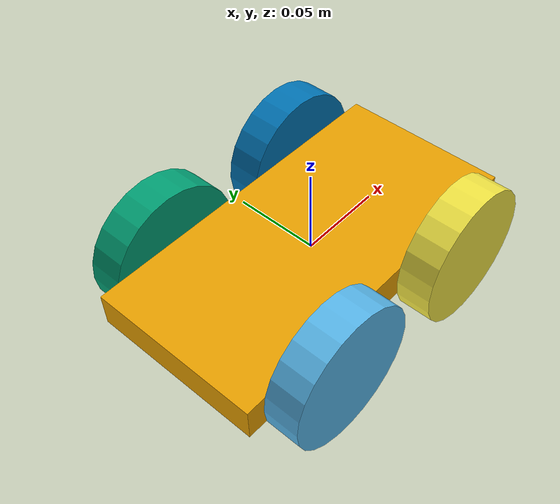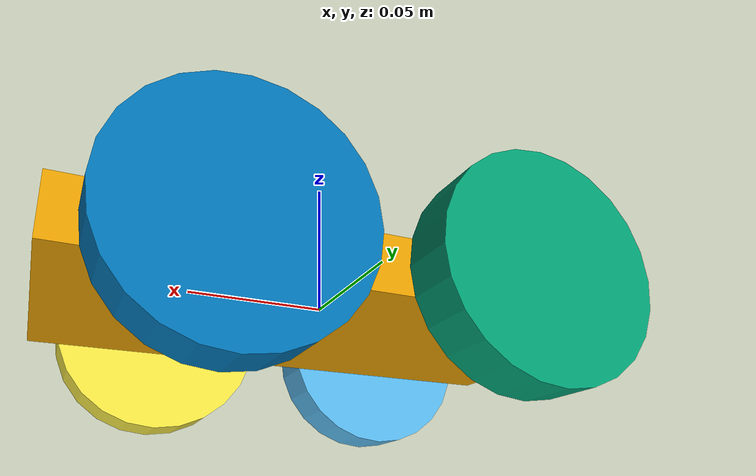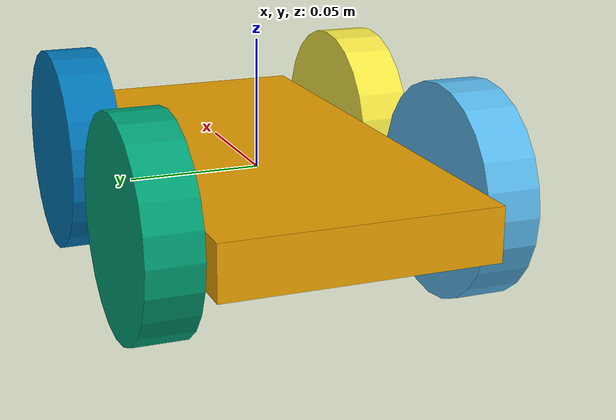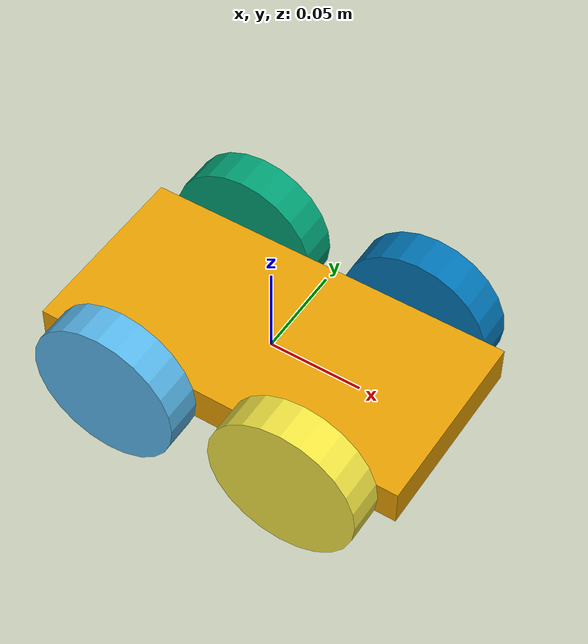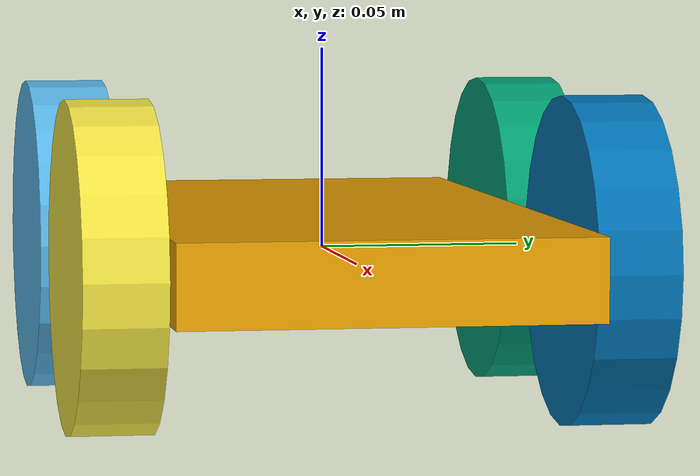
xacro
<?xml version="1.0" ?>
<robot name="/home/diogo/catkin_ws/src/robots/carbot/carbot_description/urdf/carbot2.urdf" version="1.0">
  <link name="base_link">
    <visual>
      <geometry>
        <box size="0.2 0.1 0.02"/>
      </geometry>
    </visual>
    <collision>
      <geometry>
        <box size="0.2 0.1 0.02"/>
      </geometry>
    </collision>
  </link>
  <joint name="wheel4" type="continuous">
    <origin xyz="-0.05 -0.06 0.0" rpy="1.5708 -1e-06 0.0"/>
    <axis xyz="0.0 -4e-06 -1.0"/>
    <parent link="base_link"/>
    <child link="wheel4"/>
    <limit effort="10.0" lower="0" upper="0" velocity="10.0"/>
  </joint>
  <link name="wheel4">
    <visual>
      <origin xyz="-3e-06 2e-06 0.0" rpy="0.0 0.0 0.0"/>
      <geometry>
        <cylinder radius="0.04" length="0.02"/>
      </geometry>
    </visual>
    <collision>
      <origin xyz="-3e-06 2e-06 0.0" rpy="0.0 0.0 0.0"/>
      <geometry>
        <cylinder radius="0.04" length="0.02"/>
      </geometry>
    </collision>
  </link>
  <joint name="wheel3" type="continuous">
    <origin xyz="-0.050003 0.060002 0.0" rpy="1.5708 0.0 0.0"/>
    <axis xyz="0.0 -4e-06 -1.0"/>
    <parent link="base_link"/>
    <child link="wheel3"/>
    <limit effort="10.0" lower="0" upper="0" velocity="10.0"/>
  </joint>
  <link name="wheel3">
    <visual>
      <origin xyz="0.0 5e-06 0.0" rpy="0.0 0.0 0.0"/>
      <geometry>
        <cylinder radius="0.04" length="0.02"/>
      </geometry>
    </visual>
    <collision>
      <origin xyz="0.0 5e-06 0.0" rpy="0.0 0.0 0.0"/>
      <geometry>
        <cylinder radius="0.04" length="0.02"/>
      </geometry>
    </collision>
  </link>
  <joint name="wheel2" type="continuous">
    <origin xyz="0.05 -0.059995 0.0" rpy="1.5708 -1e-06 0.0"/>
    <axis xyz="0.0 -4e-06 -1.0"/>
    <parent link="base_link"/>
    <child link="wheel2"/>
    <limit effort="10.0" lower="0" upper="0" velocity="10.0"/>
  </joint>
  <link name="wheel2">
    <visual>
      <origin xyz="-3e-06 2e-06 0.0" rpy="0.0 0.0 0.0"/>
      <geometry>
        <cylinder radius="0.04" length="0.02"/>
      </geometry>
    </visual>
    <collision>
      <origin xyz="-3e-06 2e-06 0.0" rpy="0.0 0.0 0.0"/>
      <geometry>
        <cylinder radius="0.04" length="0.02"/>
      </geometry>
    </collision>
  </link>
  <joint name="wheel1" type="continuous">
    <origin xyz="0.049997 0.060002 0.0" rpy="1.5708 0.0 0.0"/>
    <axis xyz="0.0 -4e-06 -1.0"/>
    <parent link="base_link"/>
    <child link="wheel1"/>
    <limit effort="10.0" lower="0" upper="0" velocity="10.0"/>
  </joint>
  <link name="wheel1">
    <visual>
      <origin xyz="0.0 5e-06 0.0" rpy="0.0 0.0 0.0"/>
      <geometry>
        <cylinder radius="0.04" length="0.02"/>
      </geometry>
    </visual>
    <collision>
      <origin xyz="0.0 5e-06 0.0" rpy="0.0 0.0 0.0"/>
      <geometry>
        <cylinder radius="0.04" length="0.02"/>
      </geometry>
    </collision>
  </link>
  <link name="ds_right"/>
  <joint name="base_link_ds_right_joint" type="fixed">
    <origin xyz="0.105087 -0.032502 0.0" rpy="0.0 0.0 -0.3"/>
    <parent link="base_link"/>
    <child link="ds_right"/>
  </joint>
  <link name="ds_left"/>
  <joint name="base_link_ds_left_joint" type="fixed">
    <origin xyz="0.105087 0.032507 0.0" rpy="0.0 0.0 0.3"/>
    <parent link="base_link"/>
    <child link="ds_left"/>
  </joint>
  <link name="gyro"/>
  <joint name="base_link_gyro_joint" type="fixed">
    <origin xyz="0.0 0.0 0.015" rpy="0.0 0.0 0.0"/>
    <parent link="base_link"/>
    <child link="gyro"/>
  </joint>
  <link name="accelerometer"/>
  <joint name="base_link_accelerometer_joint" type="fixed">
    <origin xyz="0.0008244156733916555 0.00049225321909848 0.014995792462240684" rpy="-3.668874226961156e-05 -7.769112709439543e-05 -0.0007952407141155575"/>
    <parent link="base_link"/>
    <child link="accelerometer"/>
  </joint>
  <link name="solid">
    <visual>
      <geometry>
        <box size="0.2 0.1 0.02"/>
      </geometry>
    </visual>
    <collision>
      <geometry>
        <box size="0.2 0.1 0.02"/>
      </geometry>
    </collision>
  </link>
  <joint name="base_link_solid_joint" type="fixed">
    <origin xyz="0.0 0.0 0.0" rpy="0.0 0.0 0.0"/>
    <parent link="base_link"/>
    <child link="solid"/>
  </joint>
</robot>
